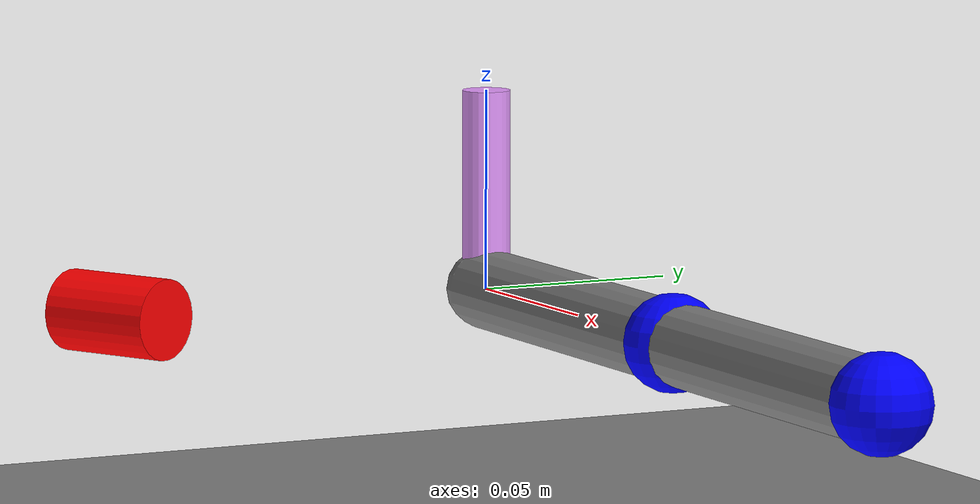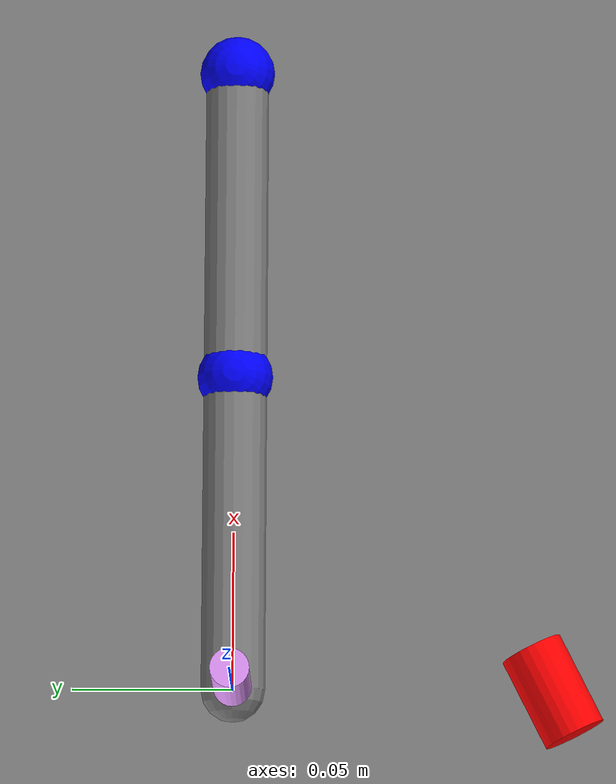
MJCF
<mujoco model="slider-crank">
  <!-- visual properties associated with the slider-crank mechanism -->
  <visual>
    <scale slidercrank=".1"/>
    <rgba slidercrank="0.5 0.4 0.8 1" crankbroken="0.0 0.6 0.2 1"/>
  </visual>

  <!-- defining some defaults for readability -->
  <default>
    <position ctrllimited="true" ctrlrange="-.1 .1" kp="30"/>
    <!-- 포지션 제한 -->
    <default class="joint">
        <!-- joint 정의 보라색 계열-->
      <geom type="cylinder" size=".006" fromto="0 0 0 0 0 .05" rgba=".9 .6 1 1"/>
    </default>
    <default class="slidersite">
        <!-- slidersite 는  빨간색상 -->
      <site type="cylinder" size=".01 .015" rgba="1 0 0 1" />
    </default>
    <default class="cranksite">
      <site size=".012" rgba="0 0 1 1" />
    </default>
  </default>

  <worldbody>
    <light pos="0 0 1"/>
    <geom type="plane" size=".5 .5 .01" pos="0 0 -.05"/>
    <site name="slidersite" class="slidersite" pos="0 -.1 0" zaxis="1 .5 0"/>
    <body>
      <joint damping=".1"/>
      <geom class="joint"/>
      <geom type="capsule" size=".01" fromto="0 0 0 .2 0 0"/>
      <site name="cranksite" class="cranksite" pos=".1 0 0"/>
      <site name="cranksite2" class="cranksite" pos=".2 0 0"/>
    </body>
  </worldbody>

  <actuator>
    <!-- forward slider-crank: the slider site is attached to the parent -->
    <position name="forward" cranksite="cranksite" slidersite="slidersite" cranklength=".08"/>

    <!-- backward slider-crank: the slider site is attached to the child -->

    <!--  The "broken-crank" actuator is "broken" in the initial state: the crank length is too
          short to maintain the requested geometric relationship -->

  </actuator>
</mujoco>
